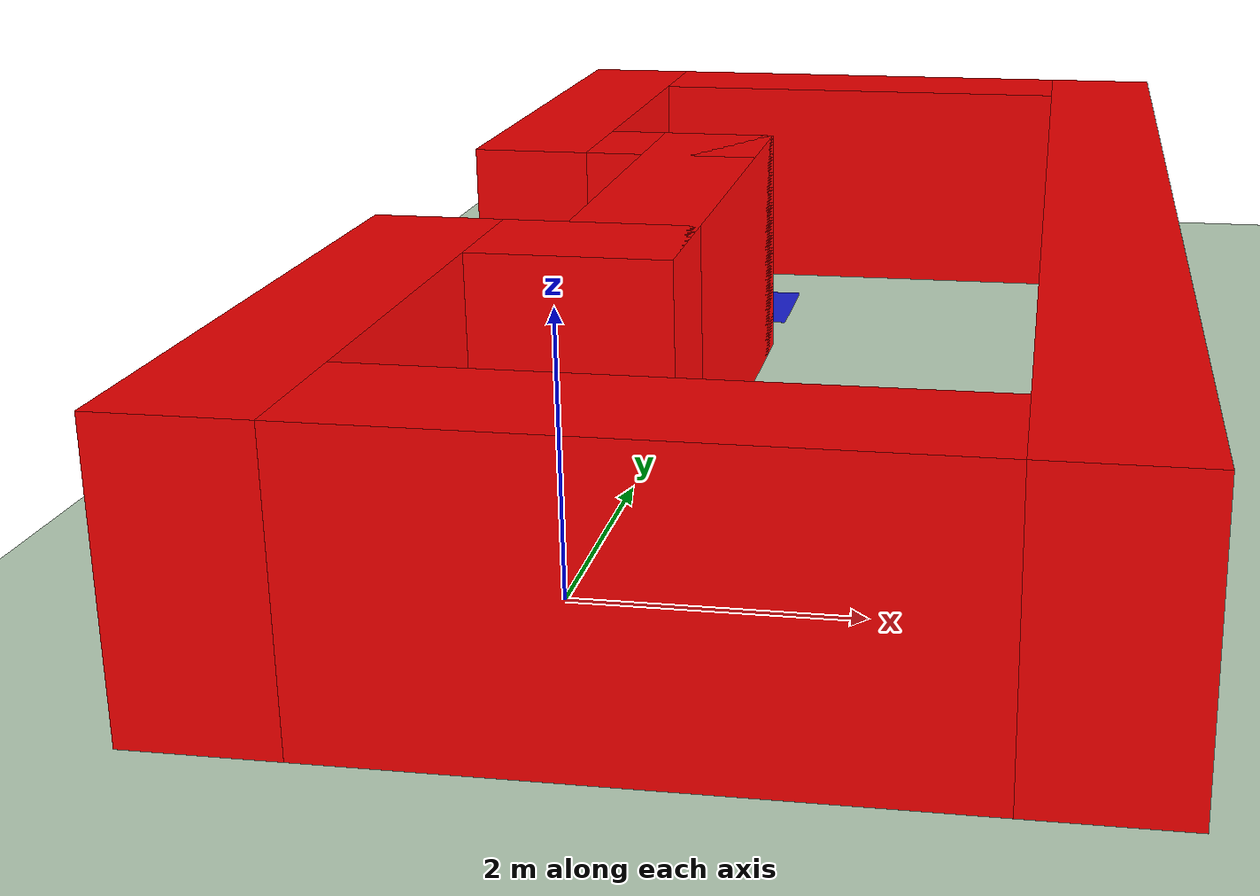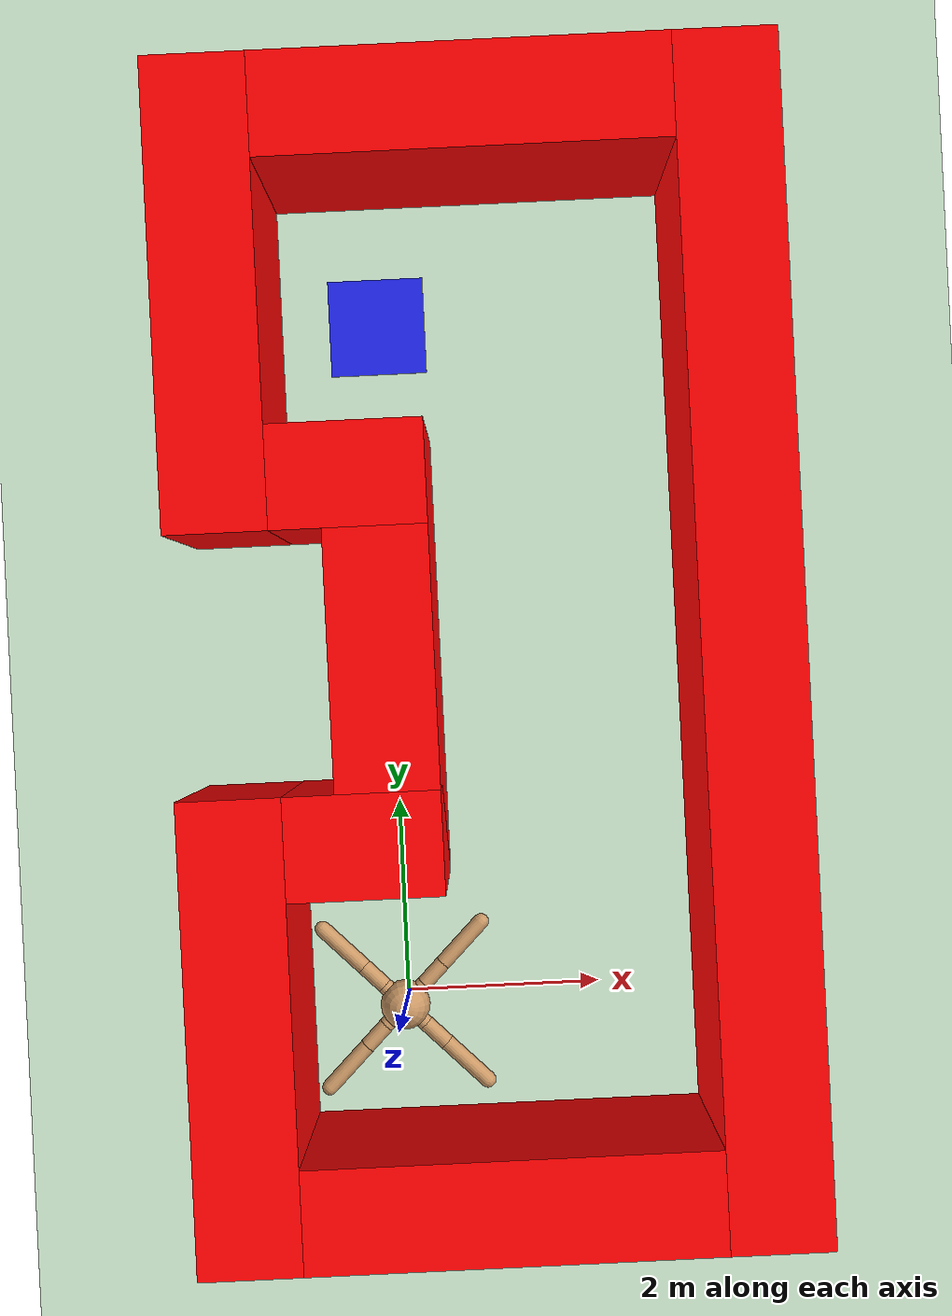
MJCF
<mujoco model="ant">
  <compiler inertiafromgeom="true" angle="degree" coordinate="local"/>
  <option timestep="0.02" integrator="RK4"/>
  <custom>
    <numeric name="init_qpos" data="0.0 0.0 0.55 1.0 0.0 0.0 0.0 0.0 1.0 0.0 -1.0 0.0 -1.0 0.0 1.0"/>
  </custom>
  <default>
    <joint limited="true" armature="1" damping="1"/>
    <geom condim="3" conaffinity="0" margin="0.01" friction="1 0.5 0.5" solref=".02 1" solimp=".8 .8 .01" rgba="0.8 0.6 0.4 1" density="5.0"/>
  </default>
  <asset>
    <texture type="skybox" builtin="gradient" width="100" height="100" rgb1="1 1 1" rgb2="0 0 0"/>
    <texture name="texgeom" type="cube" builtin="flat" mark="cross" width="127" height="1278" rgb1="0.8 0.6 0.4" rgb2="0.8 0.6 0.4" markrgb="1 1 1" random="0.01"/>
    <texture name="texplane" type="2d" builtin="gradient" rgb1="0 0 0" rgb2="0 0 0" width="100" height="100"/>
    <material name="MatPlane" texture="texplane" shininess="1" texrepeat="1 1" specular="1" reflectance="0.5"/>
    <material name="geom" texture="texgeom" texuniform="true"/>
  </asset>
  <worldbody>
    <light directional="true" cutoff="100" exponent="1" diffuse="1 1 1" specular=".1 .1 .1" pos="0 0 1.3" dir="-0 0 -1.3"/>
    <geom name="floor" material="MatPlane" pos="0 0 0" size="40 40 40" type="plane" conaffinity="1" rgba="0.8 0.9 0.8 1" condim="3"/>
    <body name="torso" pos="0 0 0.75">
      <geom name="torso_geom" type="sphere" size="0.25" pos="0 0 0"/>
      <joint name="root" type="free" limited="false" pos="0 0 0" axis="0 0 1" margin="0.01" armature="0" damping="0"/>
      <body name="front_left_leg" pos="0 0 0">
        <geom name="aux_1_geom" type="capsule" size="0.08" fromto="0.0 0.0 0.0 0.2 0.2 0.0"/>
        <body name="aux_1" pos="0.2 0.2 0">
          <joint name="hip_1" type="hinge" pos="0.0 0.0 0.0" axis="0 0 1" range="-30 30"/>
          <geom name="left_leg_geom" type="capsule" size="0.08" fromto="0.0 0.0 0.0 0.2 0.2 0.0"/>
          <body pos="0.2 0.2 0">
            <joint name="ankle_1" type="hinge" pos="0.0 0.0 0.0" axis="-1 1 0" range="30 70"/>
            <geom name="left_ankle_geom" type="capsule" size="0.08" fromto="0.0 0.0 0.0 0.4 0.4 0.0"/>
          </body>
        </body>
      </body>
      <body name="front_right_leg" pos="0 0 0">
        <geom name="aux_2_geom" type="capsule" size="0.08" fromto="0.0 0.0 0.0 -0.2 0.2 0.0"/>
        <body name="aux_2" pos="-0.2 0.2 0">
          <joint name="hip_2" type="hinge" pos="0.0 0.0 0.0" axis="0 0 1" range="-30 30"/>
          <geom name="right_leg_geom" type="capsule" size="0.08" fromto="0.0 0.0 0.0 -0.2 0.2 0.0"/>
          <body pos="-0.2 0.2 0">
            <joint name="ankle_2" type="hinge" pos="0.0 0.0 0.0" axis="1 1 0" range="-70 -30"/>
            <geom name="right_ankle_geom" type="capsule" size="0.08" fromto="0.0 0.0 0.0 -0.4 0.4 0.0"/>
          </body>
        </body>
      </body>
      <body name="back_leg" pos="0 0 0">
        <geom name="aux_3_geom" type="capsule" size="0.08" fromto="0.0 0.0 0.0 -0.2 -0.2 0.0"/>
        <body name="aux_3" pos="-0.2 -0.2 0">
          <joint name="hip_3" type="hinge" pos="0.0 0.0 0.0" axis="0 0 1" range="-30 30"/>
          <geom name="back_leg_geom" type="capsule" size="0.08" fromto="0.0 0.0 0.0 -0.2 -0.2 0.0"/>
          <body pos="-0.2 -0.2 0">
            <joint name="ankle_3" type="hinge" pos="0.0 0.0 0.0" axis="-1 1 0" range="-70 -30"/>
            <geom name="third_ankle_geom" type="capsule" size="0.08" fromto="0.0 0.0 0.0 -0.4 -0.4 0.0"/>
          </body>
        </body>
      </body>
      <body name="right_back_leg" pos="0 0 0">
        <geom name="aux_4_geom" type="capsule" size="0.08" fromto="0.0 0.0 0.0 0.2 -0.2 0.0"/>
        <body name="aux_4" pos="0.2 -0.2 0">
          <joint name="hip_4" type="hinge" pos="0.0 0.0 0.0" axis="0 0 1" range="-30 30"/>
          <geom name="rightback_leg_geom" type="capsule" size="0.08" fromto="0.0 0.0 0.0 0.2 -0.2 0.0"/>
          <body pos="0.2 -0.2 0">
            <joint name="ankle_4" type="hinge" pos="0.0 0.0 0.0" axis="1 1 0" range="30 70"/>
            <geom name="fourth_ankle_geom" type="capsule" size="0.08" fromto="0.0 0.0 0.0 0.4 -0.4 0.0"/>
          </body>
        </body>
      </body>
    </body>
  <geom conaffinity="1" pos="-0.25 1.75 1.0" rgba="1.0 0.0 0.0 1.0" size="0.75 0.5 1.0" type="box"/><geom conaffinity="1" pos="1.0 -1.75 1.0" rgba="1.0 0.0 0.0 1.0" size="2.0 0.5 1.0" type="box"/><geom conaffinity="1" pos="-0.25 5.25 1.0" rgba="1.0 0.0 0.0 1.0" size="0.75 0.5 1.0" type="box"/><geom conaffinity="1" pos="1.0 8.75 1.0" rgba="1.0 0.0 0.0 1.0" size="2.0 0.5 1.0" type="box"/><geom conaffinity="1" pos="0.0 3.5 1.0" rgba="1.0 0.0 0.0 1.0" size="0.5 2.25 1.0" type="box"/><geom conaffinity="1" pos="3.5 3.5 1.0" rgba="1.0 0.0 0.0 1.0" size="0.5 5.75 1.0" type="box"/><geom conaffinity="1" pos="-1.5 0.0 1.0" rgba="1.0 0.0 0.0 1.0" size="0.5 2.25 1.0" type="box"/><geom conaffinity="1" pos="-1.5 7.0 1.0" rgba="1.0 0.0 0.0 1.0" size="0.5 2.25 1.0" type="box"/><geom conaffinity="0" pos="0 7 0" rgba="0 0 1 0.8" size="0.5 0.5 0.01" type="box"/></worldbody>
  <actuator>
    <motor joint="hip_4" ctrlrange="-150.0 150.0" ctrllimited="true"/>
    <motor joint="ankle_4" ctrlrange="-150.0 150.0" ctrllimited="true"/>
    <motor joint="hip_1" ctrlrange="-150.0 150.0" ctrllimited="true"/>
    <motor joint="ankle_1" ctrlrange="-150.0 150.0" ctrllimited="true"/>
    <motor joint="hip_2" ctrlrange="-150.0 150.0" ctrllimited="true"/>
    <motor joint="ankle_2" ctrlrange="-150.0 150.0" ctrllimited="true"/>
    <motor joint="hip_3" ctrlrange="-150.0 150.0" ctrllimited="true"/>
    <motor joint="ankle_3" ctrlrange="-150.0 150.0" ctrllimited="true"/>
  </actuator>
</mujoco>
